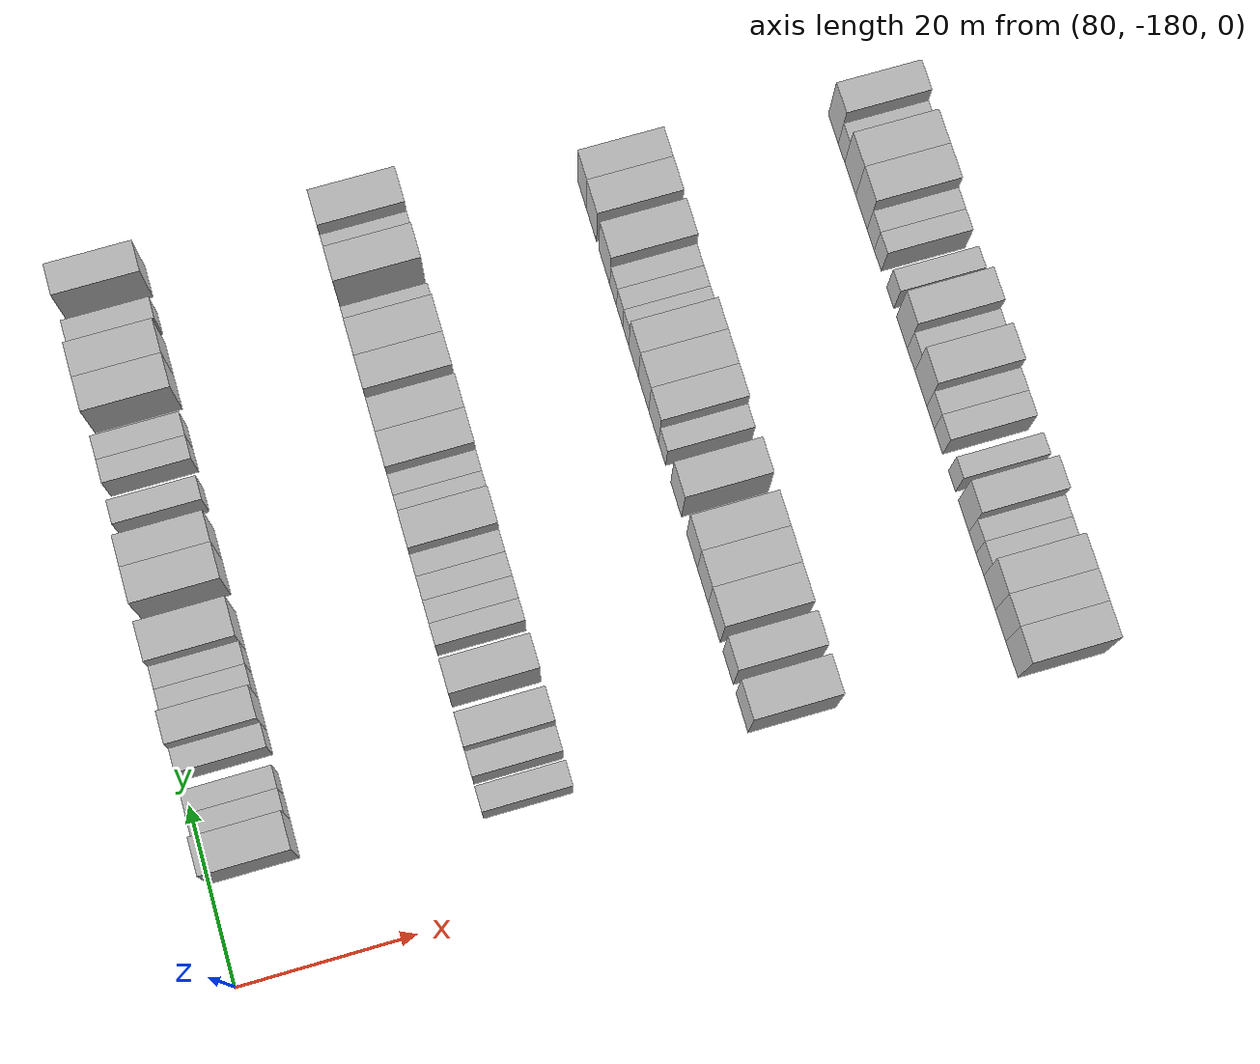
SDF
<sdf version="1.6">
 <world name="default">
  <model name="building_521">
   <static>1</static>
   <pose>85.0000 -166.6216 0 0.000000 0.000000 0.000000</pose>
   <link name="link">
    <pose>0 0 4.50 0 0 0</pose>
    <collision name="collision"><geometry><box><size>10.0000 4.2219 9.0000</size></box></geometry></collision>
    <visual name="visual">
     <cast_shadows>0</cast_shadows>
     <geometry><box><size>10.0000 4.2219 9.0000</size></box></geometry>
     <material>
      <script>
       <uri>model://HANNAS_wall/materials/scripts</uri>
       <uri>model://HANNAS_wall/materials/textures</uri>
       <name>vrc/HANNAS_wall</name>
      </script>
     </material>
    </visual>
   </link>
  </model>
  <model name="building_522">
   <static>1</static>
   <pose>85.0000 -163.1021 0 0.000000 0.000000 0.000000</pose>
   <link name="link">
    <pose>0 0 3.00 0 0 0</pose>
    <collision name="collision"><geometry><box><size>10.0000 2.8172 6.0000</size></box></geometry></collision>
    <visual name="visual">
     <cast_shadows>0</cast_shadows>
     <geometry><box><size>10.0000 2.8172 6.0000</size></box></geometry>
     <material>
      <script>
       <uri>model://HANNAS_wall/materials/scripts</uri>
       <uri>model://HANNAS_wall/materials/textures</uri>
       <name>vrc/HANNAS_wall</name>
      </script>
     </material>
    </visual>
   </link>
  </model>
  <model name="building_523">
   <static>1</static>
   <pose>85.0000 -160.4286 0 0.000000 0.000000 0.000000</pose>
   <link name="link">
    <pose>0 0 3.00 0 0 0</pose>
    <collision name="collision"><geometry><box><size>10.0000 2.5297 6.0000</size></box></geometry></collision>
    <visual name="visual">
     <cast_shadows>0</cast_shadows>
     <geometry><box><size>10.0000 2.5297 6.0000</size></box></geometry>
     <material>
      <script>
       <uri>model://HANNAS_wall/materials/scripts</uri>
       <uri>model://HANNAS_wall/materials/textures</uri>
       <name>vrc/HANNAS_wall</name>
      </script>
     </material>
    </visual>
   </link>
  </model>
  <model name="building_524">
   <static>1</static>
   <pose>85.0000 -155.8087 0 0.000000 0.000000 0.000000</pose>
   <link name="link">
    <pose>0 0 3.00 0 0 0</pose>
    <collision name="collision"><geometry><box><size>10.0000 2.7101 6.0000</size></box></geometry></collision>
    <visual name="visual">
     <cast_shadows>0</cast_shadows>
     <geometry><box><size>10.0000 2.7101 6.0000</size></box></geometry>
     <material>
      <script>
       <uri>model://HANNAS_wall/materials/scripts</uri>
       <uri>model://HANNAS_wall/materials/textures</uri>
       <name>vrc/HANNAS_wall</name>
      </script>
     </material>
    </visual>
   </link>
  </model>
  <model name="building_525">
   <static>1</static>
   <pose>85.0000 -152.6145 0 0.000000 0.000000 0.000000</pose>
   <link name="link">
    <pose>0 0 4.50 0 0 0</pose>
    <collision name="collision"><geometry><box><size>10.0000 3.6782 9.0000</size></box></geometry></collision>
    <visual name="visual">
     <cast_shadows>0</cast_shadows>
     <geometry><box><size>10.0000 3.6782 9.0000</size></box></geometry>
     <material>
      <script>
       <uri>model://HANNAS_wall/materials/scripts</uri>
       <uri>model://HANNAS_wall/materials/textures</uri>
       <name>vrc/HANNAS_wall</name>
      </script>
     </material>
    </visual>
   </link>
  </model>
  <model name="building_526">
   <static>1</static>
   <pose>85.0000 -149.3293 0 0.000000 0.000000 0.000000</pose>
   <link name="link">
    <pose>0 0 3.00 0 0 0</pose>
    <collision name="collision"><geometry><box><size>10.0000 2.8923 6.0000</size></box></geometry></collision>
    <visual name="visual">
     <cast_shadows>0</cast_shadows>
     <geometry><box><size>10.0000 2.8923 6.0000</size></box></geometry>
     <material>
      <script>
       <uri>model://HANNAS_wall/materials/scripts</uri>
       <uri>model://HANNAS_wall/materials/textures</uri>
       <name>vrc/HANNAS_wall</name>
      </script>
     </material>
    </visual>
   </link>
  </model>
  <model name="building_527">
   <static>1</static>
   <pose>85.0000 -146.5955 0 0.000000 0.000000 0.000000</pose>
   <link name="link">
    <pose>0 0 3.00 0 0 0</pose>
    <collision name="collision"><geometry><box><size>10.0000 2.5754 6.0000</size></box></geometry></collision>
    <visual name="visual">
     <cast_shadows>0</cast_shadows>
     <geometry><box><size>10.0000 2.5754 6.0000</size></box></geometry>
     <material>
      <script>
       <uri>model://HANNAS_wall/materials/scripts</uri>
       <uri>model://HANNAS_wall/materials/textures</uri>
       <name>vrc/HANNAS_wall</name>
      </script>
     </material>
    </visual>
   </link>
  </model>
  <model name="building_528">
   <static>1</static>
   <pose>85.0000 -143.0766 0 0.000000 0.000000 0.000000</pose>
   <link name="link">
    <pose>0 0 4.50 0 0 0</pose>
    <collision name="collision"><geometry><box><size>10.0000 4.4623 9.0000</size></box></geometry></collision>
    <visual name="visual">
     <cast_shadows>0</cast_shadows>
     <geometry><box><size>10.0000 4.4623 9.0000</size></box></geometry>
     <material>
      <script>
       <uri>model://HANNAS_wall/materials/scripts</uri>
       <uri>model://HANNAS_wall/materials/textures</uri>
       <name>vrc/HANNAS_wall</name>
      </script>
     </material>
    </visual>
   </link>
  </model>
  <model name="building_529">
   <static>1</static>
   <pose>85.0000 -136.7716 0 0.000000 0.000000 0.000000</pose>
   <link name="link">
    <pose>0 0 4.50 0 0 0</pose>
    <collision name="collision"><geometry><box><size>10.0000 4.1477 9.0000</size></box></geometry></collision>
    <visual name="visual">
     <cast_shadows>0</cast_shadows>
     <geometry><box><size>10.0000 4.1477 9.0000</size></box></geometry>
     <material>
      <script>
       <uri>model://HANNAS_wall/materials/scripts</uri>
       <uri>model://HANNAS_wall/materials/textures</uri>
       <name>vrc/HANNAS_wall</name>
      </script>
     </material>
    </visual>
   </link>
  </model>
  <model name="building_530">
   <static>1</static>
   <pose>85.0000 -132.8942 0 0.000000 0.000000 0.000000</pose>
   <link name="link">
    <pose>0 0 4.50 0 0 0</pose>
    <collision name="collision"><geometry><box><size>10.0000 3.6071 9.0000</size></box></geometry></collision>
    <visual name="visual">
     <cast_shadows>0</cast_shadows>
     <geometry><box><size>10.0000 3.6071 9.0000</size></box></geometry>
     <material>
      <script>
       <uri>model://HANNAS_wall/materials/scripts</uri>
       <uri>model://HANNAS_wall/materials/textures</uri>
       <name>vrc/HANNAS_wall</name>
      </script>
     </material>
    </visual>
   </link>
  </model>
  <model name="building_531">
   <static>1</static>
   <pose>85.0000 -127.7122 0 0.000000 0.000000 0.000000</pose>
   <link name="link">
    <pose>0 0 3.00 0 0 0</pose>
    <collision name="collision"><geometry><box><size>10.0000 2.7568 6.0000</size></box></geometry></collision>
    <visual name="visual">
     <cast_shadows>0</cast_shadows>
     <geometry><box><size>10.0000 2.7568 6.0000</size></box></geometry>
     <material>
      <script>
       <uri>model://HANNAS_wall/materials/scripts</uri>
       <uri>model://HANNAS_wall/materials/textures</uri>
       <name>vrc/HANNAS_wall</name>
      </script>
     </material>
    </visual>
   </link>
  </model>
  <model name="building_532">
   <static>1</static>
   <pose>85.0000 -122.9657 0 0.000000 0.000000 0.000000</pose>
   <link name="link">
    <pose>0 0 3.00 0 0 0</pose>
    <collision name="collision"><geometry><box><size>10.0000 2.7361 6.0000</size></box></geometry></collision>
    <visual name="visual">
     <cast_shadows>0</cast_shadows>
     <geometry><box><size>10.0000 2.7361 6.0000</size></box></geometry>
     <material>
      <script>
       <uri>model://HANNAS_wall/materials/scripts</uri>
       <uri>model://HANNAS_wall/materials/textures</uri>
       <name>vrc/HANNAS_wall</name>
      </script>
     </material>
    </visual>
   </link>
  </model>
  <model name="building_533">
   <static>1</static>
   <pose>85.0000 -120.2069 0 0.000000 0.000000 0.000000</pose>
   <link name="link">
    <pose>0 0 3.00 0 0 0</pose>
    <collision name="collision"><geometry><box><size>10.0000 2.7817 6.0000</size></box></geometry></collision>
    <visual name="visual">
     <cast_shadows>0</cast_shadows>
     <geometry><box><size>10.0000 2.7817 6.0000</size></box></geometry>
     <material>
      <script>
       <uri>model://HANNAS_wall/materials/scripts</uri>
       <uri>model://HANNAS_wall/materials/textures</uri>
       <name>vrc/HANNAS_wall</name>
      </script>
     </material>
    </visual>
   </link>
  </model>
  <model name="building_534">
   <static>1</static>
   <pose>85.0000 -114.7946 0 0.000000 0.000000 0.000000</pose>
   <link name="link">
    <pose>0 0 4.50 0 0 0</pose>
    <collision name="collision"><geometry><box><size>10.0000 4.0430 9.0000</size></box></geometry></collision>
    <visual name="visual">
     <cast_shadows>0</cast_shadows>
     <geometry><box><size>10.0000 4.0430 9.0000</size></box></geometry>
     <material>
      <script>
       <uri>model://HANNAS_wall/materials/scripts</uri>
       <uri>model://HANNAS_wall/materials/textures</uri>
       <name>vrc/HANNAS_wall</name>
      </script>
     </material>
    </visual>
   </link>
  </model>
  <model name="building_535">
   <static>1</static>
   <pose>85.0000 -110.7389 0 0.000000 0.000000 0.000000</pose>
   <link name="link">
    <pose>0 0 4.50 0 0 0</pose>
    <collision name="collision"><geometry><box><size>10.0000 4.0684 9.0000</size></box></geometry></collision>
    <visual name="visual">
     <cast_shadows>0</cast_shadows>
     <geometry><box><size>10.0000 4.0684 9.0000</size></box></geometry>
     <material>
      <script>
       <uri>model://HANNAS_wall/materials/scripts</uri>
       <uri>model://HANNAS_wall/materials/textures</uri>
       <name>vrc/HANNAS_wall</name>
      </script>
     </material>
    </visual>
   </link>
  </model>
  <model name="building_536">
   <static>1</static>
   <pose>85.0000 -106.3944 0 0.000000 0.000000 0.000000</pose>
   <link name="link">
    <pose>0 0 3.00 0 0 0</pose>
    <collision name="collision"><geometry><box><size>10.0000 2.6205 6.0000</size></box></geometry></collision>
    <visual name="visual">
     <cast_shadows>0</cast_shadows>
     <geometry><box><size>10.0000 2.6205 6.0000</size></box></geometry>
     <material>
      <script>
       <uri>model://HANNAS_wall/materials/scripts</uri>
       <uri>model://HANNAS_wall/materials/textures</uri>
       <name>vrc/HANNAS_wall</name>
      </script>
     </material>
    </visual>
   </link>
  </model>
  <model name="building_537">
   <static>1</static>
   <pose>85.0000 -101.2181 0 0.000000 0.000000 0.000000</pose>
   <link name="link">
    <pose>0 0 4.50 0 0 0</pose>
    <collision name="collision"><geometry><box><size>10.0000 3.7322 9.0000</size></box></geometry></collision>
    <visual name="visual">
     <cast_shadows>0</cast_shadows>
     <geometry><box><size>10.0000 3.7322 9.0000</size></box></geometry>
     <material>
      <script>
       <uri>model://HANNAS_wall/materials/scripts</uri>
       <uri>model://HANNAS_wall/materials/textures</uri>
       <name>vrc/HANNAS_wall</name>
      </script>
     </material>
    </visual>
   </link>
  </model>
  <model name="building_754">
   <static>1</static>
   <pose>115.0000 -168.7305 0 0.000000 0.000000 0.000000</pose>
   <link name="link">
    <pose>0 0 3.00 0 0 0</pose>
    <collision name="collision"><geometry><box><size>10.0000 2.8533 6.0000</size></box></geometry></collision>
    <visual name="visual">
     <cast_shadows>0</cast_shadows>
     <geometry><box><size>10.0000 2.8533 6.0000</size></box></geometry>
     <material>
      <script>
       <uri>model://HANNAS_wall/materials/scripts</uri>
       <uri>model://HANNAS_wall/materials/textures</uri>
       <name>vrc/HANNAS_wall</name>
      </script>
     </material>
    </visual>
   </link>
  </model>
  <model name="building_755">
   <static>1</static>
   <pose>115.0000 -164.8703 0 0.000000 0.000000 0.000000</pose>
   <link name="link">
    <pose>0 0 3.00 0 0 0</pose>
    <collision name="collision"><geometry><box><size>10.0000 2.8670 6.0000</size></box></geometry></collision>
    <visual name="visual">
     <cast_shadows>0</cast_shadows>
     <geometry><box><size>10.0000 2.8670 6.0000</size></box></geometry>
     <material>
      <script>
       <uri>model://HANNAS_wall/materials/scripts</uri>
       <uri>model://HANNAS_wall/materials/textures</uri>
       <name>vrc/HANNAS_wall</name>
      </script>
     </material>
    </visual>
   </link>
  </model>
  <model name="building_756">
   <static>1</static>
   <pose>115.0000 -161.5123 0 0.000000 0.000000 0.000000</pose>
   <link name="link">
    <pose>0 0 4.50 0 0 0</pose>
    <collision name="collision"><geometry><box><size>10.0000 3.8490 9.0000</size></box></geometry></collision>
    <visual name="visual">
     <cast_shadows>0</cast_shadows>
     <geometry><box><size>10.0000 3.8490 9.0000</size></box></geometry>
     <material>
      <script>
       <uri>model://HANNAS_wall/materials/scripts</uri>
       <uri>model://HANNAS_wall/materials/textures</uri>
       <name>vrc/HANNAS_wall</name>
      </script>
     </material>
    </visual>
   </link>
  </model>
  <model name="building_757">
   <static>1</static>
   <pose>115.0000 -155.6381 0 0.000000 0.000000 0.000000</pose>
   <link name="link">
    <pose>0 0 4.50 0 0 0</pose>
    <collision name="collision"><geometry><box><size>10.0000 3.8994 9.0000</size></box></geometry></collision>
    <visual name="visual">
     <cast_shadows>0</cast_shadows>
     <geometry><box><size>10.0000 3.8994 9.0000</size></box></geometry>
     <material>
      <script>
       <uri>model://HANNAS_wall/materials/scripts</uri>
       <uri>model://HANNAS_wall/materials/textures</uri>
       <name>vrc/HANNAS_wall</name>
      </script>
     </material>
    </visual>
   </link>
  </model>
  <model name="building_758">
   <static>1</static>
   <pose>115.0000 -150.4165 0 0.000000 0.000000 0.000000</pose>
   <link name="link">
    <pose>0 0 3.00 0 0 0</pose>
    <collision name="collision"><geometry><box><size>10.0000 2.5439 6.0000</size></box></geometry></collision>
    <visual name="visual">
     <cast_shadows>0</cast_shadows>
     <geometry><box><size>10.0000 2.5439 6.0000</size></box></geometry>
     <material>
      <script>
       <uri>model://HANNAS_wall/materials/scripts</uri>
       <uri>model://HANNAS_wall/materials/textures</uri>
       <name>vrc/HANNAS_wall</name>
      </script>
     </material>
    </visual>
   </link>
  </model>
  <model name="building_759">
   <static>1</static>
   <pose>115.0000 -147.8576 0 0.000000 0.000000 0.000000</pose>
   <link name="link">
    <pose>0 0 3.00 0 0 0</pose>
    <collision name="collision"><geometry><box><size>10.0000 2.5738 6.0000</size></box></geometry></collision>
    <visual name="visual">
     <cast_shadows>0</cast_shadows>
     <geometry><box><size>10.0000 2.5738 6.0000</size></box></geometry>
     <material>
      <script>
       <uri>model://HANNAS_wall/materials/scripts</uri>
       <uri>model://HANNAS_wall/materials/textures</uri>
       <name>vrc/HANNAS_wall</name>
      </script>
     </material>
    </visual>
   </link>
  </model>
  <model name="building_760">
   <static>1</static>
   <pose>115.0000 -145.1961 0 0.000000 0.000000 0.000000</pose>
   <link name="link">
    <pose>0 0 3.00 0 0 0</pose>
    <collision name="collision"><geometry><box><size>10.0000 2.7491 6.0000</size></box></geometry></collision>
    <visual name="visual">
     <cast_shadows>0</cast_shadows>
     <geometry><box><size>10.0000 2.7491 6.0000</size></box></geometry>
     <material>
      <script>
       <uri>model://HANNAS_wall/materials/scripts</uri>
       <uri>model://HANNAS_wall/materials/textures</uri>
       <name>vrc/HANNAS_wall</name>
      </script>
     </material>
    </visual>
   </link>
  </model>
  <model name="building_761">
   <static>1</static>
   <pose>115.0000 -142.5381 0 0.000000 0.000000 0.000000</pose>
   <link name="link">
    <pose>0 0 3.00 0 0 0</pose>
    <collision name="collision"><geometry><box><size>10.0000 2.5670 6.0000</size></box></geometry></collision>
    <visual name="visual">
     <cast_shadows>0</cast_shadows>
     <geometry><box><size>10.0000 2.5670 6.0000</size></box></geometry>
     <material>
      <script>
       <uri>model://HANNAS_wall/materials/scripts</uri>
       <uri>model://HANNAS_wall/materials/textures</uri>
       <name>vrc/HANNAS_wall</name>
      </script>
     </material>
    </visual>
   </link>
  </model>
  <model name="building_762">
   <static>1</static>
   <pose>115.0000 -139.1186 0 0.000000 0.000000 0.000000</pose>
   <link name="link">
    <pose>0 0 4.50 0 0 0</pose>
    <collision name="collision"><geometry><box><size>10.0000 4.2720 9.0000</size></box></geometry></collision>
    <visual name="visual">
     <cast_shadows>0</cast_shadows>
     <geometry><box><size>10.0000 4.2720 9.0000</size></box></geometry>
     <material>
      <script>
       <uri>model://HANNAS_wall/materials/scripts</uri>
       <uri>model://HANNAS_wall/materials/textures</uri>
       <name>vrc/HANNAS_wall</name>
      </script>
     </material>
    </visual>
   </link>
  </model>
  <model name="building_763">
   <static>1</static>
   <pose>115.0000 -135.7194 0 0.000000 0.000000 0.000000</pose>
   <link name="link">
    <pose>0 0 3.00 0 0 0</pose>
    <collision name="collision"><geometry><box><size>10.0000 2.5264 6.0000</size></box></geometry></collision>
    <visual name="visual">
     <cast_shadows>0</cast_shadows>
     <geometry><box><size>10.0000 2.5264 6.0000</size></box></geometry>
     <material>
      <script>
       <uri>model://HANNAS_wall/materials/scripts</uri>
       <uri>model://HANNAS_wall/materials/textures</uri>
       <name>vrc/HANNAS_wall</name>
      </script>
     </material>
    </visual>
   </link>
  </model>
  <model name="building_764">
   <static>1</static>
   <pose>115.0000 -133.2187 0 0.000000 0.000000 0.000000</pose>
   <link name="link">
    <pose>0 0 3.00 0 0 0</pose>
    <collision name="collision"><geometry><box><size>10.0000 2.4751 6.0000</size></box></geometry></collision>
    <visual name="visual">
     <cast_shadows>0</cast_shadows>
     <geometry><box><size>10.0000 2.4751 6.0000</size></box></geometry>
     <material>
      <script>
       <uri>model://HANNAS_wall/materials/scripts</uri>
       <uri>model://HANNAS_wall/materials/textures</uri>
       <name>vrc/HANNAS_wall</name>
      </script>
     </material>
    </visual>
   </link>
  </model>
  <model name="building_765">
   <static>1</static>
   <pose>115.0000 -129.9228 0 0.000000 0.000000 0.000000</pose>
   <link name="link">
    <pose>0 0 4.50 0 0 0</pose>
    <collision name="collision"><geometry><box><size>10.0000 4.1165 9.0000</size></box></geometry></collision>
    <visual name="visual">
     <cast_shadows>0</cast_shadows>
     <geometry><box><size>10.0000 4.1165 9.0000</size></box></geometry>
     <material>
      <script>
       <uri>model://HANNAS_wall/materials/scripts</uri>
       <uri>model://HANNAS_wall/materials/textures</uri>
       <name>vrc/HANNAS_wall</name>
      </script>
     </material>
    </visual>
   </link>
  </model>
  <model name="building_766">
   <static>1</static>
   <pose>115.0000 -125.8862 0 0.000000 0.000000 0.000000</pose>
   <link name="link">
    <pose>0 0 4.50 0 0 0</pose>
    <collision name="collision"><geometry><box><size>10.0000 3.9567 9.0000</size></box></geometry></collision>
    <visual name="visual">
     <cast_shadows>0</cast_shadows>
     <geometry><box><size>10.0000 3.9567 9.0000</size></box></geometry>
     <material>
      <script>
       <uri>model://HANNAS_wall/materials/scripts</uri>
       <uri>model://HANNAS_wall/materials/textures</uri>
       <name>vrc/HANNAS_wall</name>
      </script>
     </material>
    </visual>
   </link>
  </model>
  <model name="building_767">
   <static>1</static>
   <pose>115.0000 -120.9160 0 0.000000 0.000000 0.000000</pose>
   <link name="link">
    <pose>0 0 4.50 0 0 0</pose>
    <collision name="collision"><geometry><box><size>10.0000 3.9837 9.0000</size></box></geometry></collision>
    <visual name="visual">
     <cast_shadows>0</cast_shadows>
     <geometry><box><size>10.0000 3.9837 9.0000</size></box></geometry>
     <material>
      <script>
       <uri>model://HANNAS_wall/materials/scripts</uri>
       <uri>model://HANNAS_wall/materials/textures</uri>
       <name>vrc/HANNAS_wall</name>
      </script>
     </material>
    </visual>
   </link>
  </model>
  <model name="building_768">
   <static>1</static>
   <pose>115.0000 -116.7373 0 0.000000 0.000000 0.000000</pose>
   <link name="link">
    <pose>0 0 4.50 0 0 0</pose>
    <collision name="collision"><geometry><box><size>10.0000 4.3737 9.0000</size></box></geometry></collision>
    <visual name="visual">
     <cast_shadows>0</cast_shadows>
     <geometry><box><size>10.0000 4.3737 9.0000</size></box></geometry>
     <material>
      <script>
       <uri>model://HANNAS_wall/materials/scripts</uri>
       <uri>model://HANNAS_wall/materials/textures</uri>
       <name>vrc/HANNAS_wall</name>
      </script>
     </material>
    </visual>
   </link>
  </model>
  <model name="building_769">
   <static>1</static>
   <pose>115.0000 -113.3337 0 0.000000 0.000000 0.000000</pose>
   <link name="link">
    <pose>0 0 3.00 0 0 0</pose>
    <collision name="collision"><geometry><box><size>10.0000 2.4335 6.0000</size></box></geometry></collision>
    <visual name="visual">
     <cast_shadows>0</cast_shadows>
     <geometry><box><size>10.0000 2.4335 6.0000</size></box></geometry>
     <material>
      <script>
       <uri>model://HANNAS_wall/materials/scripts</uri>
       <uri>model://HANNAS_wall/materials/textures</uri>
       <name>vrc/HANNAS_wall</name>
      </script>
     </material>
    </visual>
   </link>
  </model>
  <model name="building_770">
   <static>1</static>
   <pose>115.0000 -108.0177 0 0.000000 0.000000 0.000000</pose>
   <link name="link">
    <pose>0 0 4.50 0 0 0</pose>
    <collision name="collision"><geometry><box><size>10.0000 4.1985 9.0000</size></box></geometry></collision>
    <visual name="visual">
     <cast_shadows>0</cast_shadows>
     <geometry><box><size>10.0000 4.1985 9.0000</size></box></geometry>
     <material>
      <script>
       <uri>model://HANNAS_wall/materials/scripts</uri>
       <uri>model://HANNAS_wall/materials/textures</uri>
       <name>vrc/HANNAS_wall</name>
      </script>
     </material>
    </visual>
   </link>
  </model>
  <model name="building_771">
   <static>1</static>
   <pose>115.0000 -104.6468 0 0.000000 0.000000 0.000000</pose>
   <link name="link">
    <pose>0 0 3.00 0 0 0</pose>
    <collision name="collision"><geometry><box><size>10.0000 2.5434 6.0000</size></box></geometry></collision>
    <visual name="visual">
     <cast_shadows>0</cast_shadows>
     <geometry><box><size>10.0000 2.5434 6.0000</size></box></geometry>
     <material>
      <script>
       <uri>model://HANNAS_wall/materials/scripts</uri>
       <uri>model://HANNAS_wall/materials/textures</uri>
       <name>vrc/HANNAS_wall</name>
      </script>
     </material>
    </visual>
   </link>
  </model>
  <model name="building_772">
   <static>1</static>
   <pose>115.0000 -101.2162 0 0.000000 0.000000 0.000000</pose>
   <link name="link">
    <pose>0 0 4.50 0 0 0</pose>
    <collision name="collision"><geometry><box><size>10.0000 4.3178 9.0000</size></box></geometry></collision>
    <visual name="visual">
     <cast_shadows>0</cast_shadows>
     <geometry><box><size>10.0000 4.3178 9.0000</size></box></geometry>
     <material>
      <script>
       <uri>model://HANNAS_wall/materials/scripts</uri>
       <uri>model://HANNAS_wall/materials/textures</uri>
       <name>vrc/HANNAS_wall</name>
      </script>
     </material>
    </visual>
   </link>
  </model>
  <model name="building_971">
   <static>1</static>
   <pose>145.0000 -166.9466 0 0.000000 0.000000 0.000000</pose>
   <link name="link">
    <pose>0 0 4.50 0 0 0</pose>
    <collision name="collision"><geometry><box><size>10.0000 4.4837 9.0000</size></box></geometry></collision>
    <visual name="visual">
     <cast_shadows>0</cast_shadows>
     <geometry><box><size>10.0000 4.4837 9.0000</size></box></geometry>
     <material>
      <script>
       <uri>model://HANNAS_wall/materials/scripts</uri>
       <uri>model://HANNAS_wall/materials/textures</uri>
       <name>vrc/HANNAS_wall</name>
      </script>
     </material>
    </visual>
   </link>
  </model>
  <model name="building_972">
   <static>1</static>
   <pose>145.0000 -161.7770 0 0.000000 0.000000 0.000000</pose>
   <link name="link">
    <pose>0 0 4.50 0 0 0</pose>
    <collision name="collision"><geometry><box><size>10.0000 3.8556 9.0000</size></box></geometry></collision>
    <visual name="visual">
     <cast_shadows>0</cast_shadows>
     <geometry><box><size>10.0000 3.8556 9.0000</size></box></geometry>
     <material>
      <script>
       <uri>model://HANNAS_wall/materials/scripts</uri>
       <uri>model://HANNAS_wall/materials/textures</uri>
       <name>vrc/HANNAS_wall</name>
      </script>
     </material>
    </visual>
   </link>
  </model>
  <model name="building_973">
   <static>1</static>
   <pose>145.0000 -156.6125 0 0.000000 0.000000 0.000000</pose>
   <link name="link">
    <pose>0 0 4.50 0 0 0</pose>
    <collision name="collision"><geometry><box><size>10.0000 4.4734 9.0000</size></box></geometry></collision>
    <visual name="visual">
     <cast_shadows>0</cast_shadows>
     <geometry><box><size>10.0000 4.4734 9.0000</size></box></geometry>
     <material>
      <script>
       <uri>model://HANNAS_wall/materials/scripts</uri>
       <uri>model://HANNAS_wall/materials/textures</uri>
       <name>vrc/HANNAS_wall</name>
      </script>
     </material>
    </visual>
   </link>
  </model>
  <model name="building_974">
   <static>1</static>
   <pose>145.0000 -152.3134 0 0.000000 0.000000 0.000000</pose>
   <link name="link">
    <pose>0 0 4.50 0 0 0</pose>
    <collision name="collision"><geometry><box><size>10.0000 4.1247 9.0000</size></box></geometry></collision>
    <visual name="visual">
     <cast_shadows>0</cast_shadows>
     <geometry><box><size>10.0000 4.1247 9.0000</size></box></geometry>
     <material>
      <script>
       <uri>model://HANNAS_wall/materials/scripts</uri>
       <uri>model://HANNAS_wall/materials/textures</uri>
       <name>vrc/HANNAS_wall</name>
      </script>
     </material>
    </visual>
   </link>
  </model>
  <model name="building_975">
   <static>1</static>
   <pose>145.0000 -148.2124 0 0.000000 0.000000 0.000000</pose>
   <link name="link">
    <pose>0 0 4.50 0 0 0</pose>
    <collision name="collision"><geometry><box><size>10.0000 4.0772 9.0000</size></box></geometry></collision>
    <visual name="visual">
     <cast_shadows>0</cast_shadows>
     <geometry><box><size>10.0000 4.0772 9.0000</size></box></geometry>
     <material>
      <script>
       <uri>model://HANNAS_wall/materials/scripts</uri>
       <uri>model://HANNAS_wall/materials/textures</uri>
       <name>vrc/HANNAS_wall</name>
      </script>
     </material>
    </visual>
   </link>
  </model>
  <model name="building_976">
   <static>1</static>
   <pose>145.0000 -142.1077 0 0.000000 0.000000 0.000000</pose>
   <link name="link">
    <pose>0 0 4.50 0 0 0</pose>
    <collision name="collision"><geometry><box><size>10.0000 4.1321 9.0000</size></box></geometry></collision>
    <visual name="visual">
     <cast_shadows>0</cast_shadows>
     <geometry><box><size>10.0000 4.1321 9.0000</size></box></geometry>
     <material>
      <script>
       <uri>model://HANNAS_wall/materials/scripts</uri>
       <uri>model://HANNAS_wall/materials/textures</uri>
       <name>vrc/HANNAS_wall</name>
      </script>
     </material>
    </visual>
   </link>
  </model>
  <model name="building_977">
   <static>1</static>
   <pose>145.0000 -136.6582 0 0.000000 0.000000 0.000000</pose>
   <link name="link">
    <pose>0 0 3.00 0 0 0</pose>
    <collision name="collision"><geometry><box><size>10.0000 2.7668 6.0000</size></box></geometry></collision>
    <visual name="visual">
     <cast_shadows>0</cast_shadows>
     <geometry><box><size>10.0000 2.7668 6.0000</size></box></geometry>
     <material>
      <script>
       <uri>model://HANNAS_wall/materials/scripts</uri>
       <uri>model://HANNAS_wall/materials/textures</uri>
       <name>vrc/HANNAS_wall</name>
      </script>
     </material>
    </visual>
   </link>
  </model>
  <model name="building_978">
   <static>1</static>
   <pose>145.0000 -133.3558 0 0.000000 0.000000 0.000000</pose>
   <link name="link">
    <pose>0 0 4.50 0 0 0</pose>
    <collision name="collision"><geometry><box><size>10.0000 3.8381 9.0000</size></box></geometry></collision>
    <visual name="visual">
     <cast_shadows>0</cast_shadows>
     <geometry><box><size>10.0000 3.8381 9.0000</size></box></geometry>
     <material>
      <script>
       <uri>model://HANNAS_wall/materials/scripts</uri>
       <uri>model://HANNAS_wall/materials/textures</uri>
       <name>vrc/HANNAS_wall</name>
      </script>
     </material>
    </visual>
   </link>
  </model>
  <model name="building_979">
   <static>1</static>
   <pose>145.0000 -129.3885 0 0.000000 0.000000 0.000000</pose>
   <link name="link">
    <pose>0 0 4.50 0 0 0</pose>
    <collision name="collision"><geometry><box><size>10.0000 4.0965 9.0000</size></box></geometry></collision>
    <visual name="visual">
     <cast_shadows>0</cast_shadows>
     <geometry><box><size>10.0000 4.0965 9.0000</size></box></geometry>
     <material>
      <script>
       <uri>model://HANNAS_wall/materials/scripts</uri>
       <uri>model://HANNAS_wall/materials/textures</uri>
       <name>vrc/HANNAS_wall</name>
      </script>
     </material>
    </visual>
   </link>
  </model>
  <model name="building_980">
   <static>1</static>
   <pose>145.0000 -125.4721 0 0.000000 0.000000 0.000000</pose>
   <link name="link">
    <pose>0 0 4.50 0 0 0</pose>
    <collision name="collision"><geometry><box><size>10.0000 3.7362 9.0000</size></box></geometry></collision>
    <visual name="visual">
     <cast_shadows>0</cast_shadows>
     <geometry><box><size>10.0000 3.7362 9.0000</size></box></geometry>
     <material>
      <script>
       <uri>model://HANNAS_wall/materials/scripts</uri>
       <uri>model://HANNAS_wall/materials/textures</uri>
       <name>vrc/HANNAS_wall</name>
      </script>
     </material>
    </visual>
   </link>
  </model>
  <model name="building_981">
   <static>1</static>
   <pose>145.0000 -122.3923 0 0.000000 0.000000 0.000000</pose>
   <link name="link">
    <pose>0 0 3.00 0 0 0</pose>
    <collision name="collision"><geometry><box><size>10.0000 2.4234 6.0000</size></box></geometry></collision>
    <visual name="visual">
     <cast_shadows>0</cast_shadows>
     <geometry><box><size>10.0000 2.4234 6.0000</size></box></geometry>
     <material>
      <script>
       <uri>model://HANNAS_wall/materials/scripts</uri>
       <uri>model://HANNAS_wall/materials/textures</uri>
       <name>vrc/HANNAS_wall</name>
      </script>
     </material>
    </visual>
   </link>
  </model>
  <model name="building_982">
   <static>1</static>
   <pose>145.0000 -119.9399 0 0.000000 0.000000 0.000000</pose>
   <link name="link">
    <pose>0 0 3.00 0 0 0</pose>
    <collision name="collision"><geometry><box><size>10.0000 2.4814 6.0000</size></box></geometry></collision>
    <visual name="visual">
     <cast_shadows>0</cast_shadows>
     <geometry><box><size>10.0000 2.4814 6.0000</size></box></geometry>
     <material>
      <script>
       <uri>model://HANNAS_wall/materials/scripts</uri>
       <uri>model://HANNAS_wall/materials/textures</uri>
       <name>vrc/HANNAS_wall</name>
      </script>
     </material>
    </visual>
   </link>
  </model>
  <model name="building_983">
   <static>1</static>
   <pose>145.0000 -117.3708 0 0.000000 0.000000 0.000000</pose>
   <link name="link">
    <pose>0 0 3.00 0 0 0</pose>
    <collision name="collision"><geometry><box><size>10.0000 2.6569 6.0000</size></box></geometry></collision>
    <visual name="visual">
     <cast_shadows>0</cast_shadows>
     <geometry><box><size>10.0000 2.6569 6.0000</size></box></geometry>
     <material>
      <script>
       <uri>model://HANNAS_wall/materials/scripts</uri>
       <uri>model://HANNAS_wall/materials/textures</uri>
       <name>vrc/HANNAS_wall</name>
      </script>
     </material>
    </visual>
   </link>
  </model>
  <model name="building_984">
   <static>1</static>
   <pose>145.0000 -113.8441 0 0.000000 0.000000 0.000000</pose>
   <link name="link">
    <pose>0 0 4.50 0 0 0</pose>
    <collision name="collision"><geometry><box><size>10.0000 4.3963 9.0000</size></box></geometry></collision>
    <visual name="visual">
     <cast_shadows>0</cast_shadows>
     <geometry><box><size>10.0000 4.3963 9.0000</size></box></geometry>
     <material>
      <script>
       <uri>model://HANNAS_wall/materials/scripts</uri>
       <uri>model://HANNAS_wall/materials/textures</uri>
       <name>vrc/HANNAS_wall</name>
      </script>
     </material>
    </visual>
   </link>
  </model>
  <model name="building_985">
   <static>1</static>
   <pose>145.0000 -108.5720 0 0.000000 0.000000 0.000000</pose>
   <link name="link">
    <pose>0 0 4.50 0 0 0</pose>
    <collision name="collision"><geometry><box><size>10.0000 4.1479 9.0000</size></box></geometry></collision>
    <visual name="visual">
     <cast_shadows>0</cast_shadows>
     <geometry><box><size>10.0000 4.1479 9.0000</size></box></geometry>
     <material>
      <script>
       <uri>model://HANNAS_wall/materials/scripts</uri>
       <uri>model://HANNAS_wall/materials/textures</uri>
       <name>vrc/HANNAS_wall</name>
      </script>
     </material>
    </visual>
   </link>
  </model>
  <model name="building_986">
   <static>1</static>
   <pose>145.0000 -104.6917 0 0.000000 0.000000 0.000000</pose>
   <link name="link">
    <pose>0 0 4.50 0 0 0</pose>
    <collision name="collision"><geometry><box><size>10.0000 3.6127 9.0000</size></box></geometry></collision>
    <visual name="visual">
     <cast_shadows>0</cast_shadows>
     <geometry><box><size>10.0000 3.6127 9.0000</size></box></geometry>
     <material>
      <script>
       <uri>model://HANNAS_wall/materials/scripts</uri>
       <uri>model://HANNAS_wall/materials/textures</uri>
       <name>vrc/HANNAS_wall</name>
      </script>
     </material>
    </visual>
   </link>
  </model>
  <model name="building_1199">
   <static>1</static>
   <pose>175.0000 -169.5330 0 0.000000 0.000000 0.000000</pose>
   <link name="link">
    <pose>0 0 4.50 0 0 0</pose>
    <collision name="collision"><geometry><box><size>10.0000 4.1319 9.0000</size></box></geometry></collision>
    <visual name="visual">
     <cast_shadows>0</cast_shadows>
     <geometry><box><size>10.0000 4.1319 9.0000</size></box></geometry>
     <material>
      <script>
       <uri>model://HANNAS_wall/materials/scripts</uri>
       <uri>model://HANNAS_wall/materials/textures</uri>
       <name>vrc/HANNAS_wall</name>
      </script>
     </material>
    </visual>
   </link>
  </model>
  <model name="building_1200">
   <static>1</static>
   <pose>175.0000 -165.6352 0 0.000000 0.000000 0.000000</pose>
   <link name="link">
    <pose>0 0 4.50 0 0 0</pose>
    <collision name="collision"><geometry><box><size>10.0000 3.6637 9.0000</size></box></geometry></collision>
    <visual name="visual">
     <cast_shadows>0</cast_shadows>
     <geometry><box><size>10.0000 3.6637 9.0000</size></box></geometry>
     <material>
      <script>
       <uri>model://HANNAS_wall/materials/scripts</uri>
       <uri>model://HANNAS_wall/materials/textures</uri>
       <name>vrc/HANNAS_wall</name>
      </script>
     </material>
    </visual>
   </link>
  </model>
  <model name="building_1201">
   <static>1</static>
   <pose>175.0000 -161.7996 0 0.000000 0.000000 0.000000</pose>
   <link name="link">
    <pose>0 0 4.50 0 0 0</pose>
    <collision name="collision"><geometry><box><size>10.0000 4.0075 9.0000</size></box></geometry></collision>
    <visual name="visual">
     <cast_shadows>0</cast_shadows>
     <geometry><box><size>10.0000 4.0075 9.0000</size></box></geometry>
     <material>
      <script>
       <uri>model://HANNAS_wall/materials/scripts</uri>
       <uri>model://HANNAS_wall/materials/textures</uri>
       <name>vrc/HANNAS_wall</name>
      </script>
     </material>
    </visual>
   </link>
  </model>
  <model name="building_1202">
   <static>1</static>
   <pose>175.0000 -158.4834 0 0.000000 0.000000 0.000000</pose>
   <link name="link">
    <pose>0 0 3.00 0 0 0</pose>
    <collision name="collision"><geometry><box><size>10.0000 2.6249 6.0000</size></box></geometry></collision>
    <visual name="visual">
     <cast_shadows>0</cast_shadows>
     <geometry><box><size>10.0000 2.6249 6.0000</size></box></geometry>
     <material>
      <script>
       <uri>model://HANNAS_wall/materials/scripts</uri>
       <uri>model://HANNAS_wall/materials/textures</uri>
       <name>vrc/HANNAS_wall</name>
      </script>
     </material>
    </visual>
   </link>
  </model>
  <model name="building_1203">
   <static>1</static>
   <pose>175.0000 -155.9099 0 0.000000 0.000000 0.000000</pose>
   <link name="link">
    <pose>0 0 3.00 0 0 0</pose>
    <collision name="collision"><geometry><box><size>10.0000 2.5222 6.0000</size></box></geometry></collision>
    <visual name="visual">
     <cast_shadows>0</cast_shadows>
     <geometry><box><size>10.0000 2.5222 6.0000</size></box></geometry>
     <material>
      <script>
       <uri>model://HANNAS_wall/materials/scripts</uri>
       <uri>model://HANNAS_wall/materials/textures</uri>
       <name>vrc/HANNAS_wall</name>
      </script>
     </material>
    </visual>
   </link>
  </model>
  <model name="building_1204">
   <static>1</static>
   <pose>175.0000 -152.7651 0 0.000000 0.000000 0.000000</pose>
   <link name="link">
    <pose>0 0 4.50 0 0 0</pose>
    <collision name="collision"><geometry><box><size>10.0000 3.7674 9.0000</size></box></geometry></collision>
    <visual name="visual">
     <cast_shadows>0</cast_shadows>
     <geometry><box><size>10.0000 3.7674 9.0000</size></box></geometry>
     <material>
      <script>
       <uri>model://HANNAS_wall/materials/scripts</uri>
       <uri>model://HANNAS_wall/materials/textures</uri>
       <name>vrc/HANNAS_wall</name>
      </script>
     </material>
    </visual>
   </link>
  </model>
  <model name="building_1205">
   <static>1</static>
   <pose>175.0000 -148.6297 0 0.000000 0.000000 0.000000</pose>
   <link name="link">
    <pose>0 0 3.00 0 0 0</pose>
    <collision name="collision"><geometry><box><size>10.0000 2.5034 6.0000</size></box></geometry></collision>
    <visual name="visual">
     <cast_shadows>0</cast_shadows>
     <geometry><box><size>10.0000 2.5034 6.0000</size></box></geometry>
     <material>
      <script>
       <uri>model://HANNAS_wall/materials/scripts</uri>
       <uri>model://HANNAS_wall/materials/textures</uri>
       <name>vrc/HANNAS_wall</name>
      </script>
     </material>
    </visual>
   </link>
  </model>
  <model name="building_1206">
   <static>1</static>
   <pose>175.0000 -143.8797 0 0.000000 0.000000 0.000000</pose>
   <link name="link">
    <pose>0 0 3.00 0 0 0</pose>
    <collision name="collision"><geometry><box><size>10.0000 2.9965 6.0000</size></box></geometry></collision>
    <visual name="visual">
     <cast_shadows>0</cast_shadows>
     <geometry><box><size>10.0000 2.9965 6.0000</size></box></geometry>
     <material>
      <script>
       <uri>model://HANNAS_wall/materials/scripts</uri>
       <uri>model://HANNAS_wall/materials/textures</uri>
       <name>vrc/HANNAS_wall</name>
      </script>
     </material>
    </visual>
   </link>
  </model>
  <model name="building_1207">
   <static>1</static>
   <pose>175.0000 -141.0112 0 0.000000 0.000000 0.000000</pose>
   <link name="link">
    <pose>0 0 3.00 0 0 0</pose>
    <collision name="collision"><geometry><box><size>10.0000 2.7406 6.0000</size></box></geometry></collision>
    <visual name="visual">
     <cast_shadows>0</cast_shadows>
     <geometry><box><size>10.0000 2.7406 6.0000</size></box></geometry>
     <material>
      <script>
       <uri>model://HANNAS_wall/materials/scripts</uri>
       <uri>model://HANNAS_wall/materials/textures</uri>
       <name>vrc/HANNAS_wall</name>
      </script>
     </material>
    </visual>
   </link>
  </model>
  <model name="building_1208">
   <static>1</static>
   <pose>175.0000 -137.4981 0 0.000000 0.000000 0.000000</pose>
   <link name="link">
    <pose>0 0 4.50 0 0 0</pose>
    <collision name="collision"><geometry><box><size>10.0000 4.2855 9.0000</size></box></geometry></collision>
    <visual name="visual">
     <cast_shadows>0</cast_shadows>
     <geometry><box><size>10.0000 4.2855 9.0000</size></box></geometry>
     <material>
      <script>
       <uri>model://HANNAS_wall/materials/scripts</uri>
       <uri>model://HANNAS_wall/materials/textures</uri>
       <name>vrc/HANNAS_wall</name>
      </script>
     </material>
    </visual>
   </link>
  </model>
  <model name="building_1209">
   <static>1</static>
   <pose>175.0000 -133.9814 0 0.000000 0.000000 0.000000</pose>
   <link name="link">
    <pose>0 0 3.00 0 0 0</pose>
    <collision name="collision"><geometry><box><size>10.0000 2.7479 6.0000</size></box></geometry></collision>
    <visual name="visual">
     <cast_shadows>0</cast_shadows>
     <geometry><box><size>10.0000 2.7479 6.0000</size></box></geometry>
     <material>
      <script>
       <uri>model://HANNAS_wall/materials/scripts</uri>
       <uri>model://HANNAS_wall/materials/textures</uri>
       <name>vrc/HANNAS_wall</name>
      </script>
     </material>
    </visual>
   </link>
  </model>
  <model name="building_1210">
   <static>1</static>
   <pose>175.0000 -130.6362 0 0.000000 0.000000 0.000000</pose>
   <link name="link">
    <pose>0 0 4.50 0 0 0</pose>
    <collision name="collision"><geometry><box><size>10.0000 3.9425 9.0000</size></box></geometry></collision>
    <visual name="visual">
     <cast_shadows>0</cast_shadows>
     <geometry><box><size>10.0000 3.9425 9.0000</size></box></geometry>
     <material>
      <script>
       <uri>model://HANNAS_wall/materials/scripts</uri>
       <uri>model://HANNAS_wall/materials/textures</uri>
       <name>vrc/HANNAS_wall</name>
      </script>
     </material>
    </visual>
   </link>
  </model>
  <model name="building_1211">
   <static>1</static>
   <pose>175.0000 -126.3576 0 0.000000 0.000000 0.000000</pose>
   <link name="link">
    <pose>0 0 3.00 0 0 0</pose>
    <collision name="collision"><geometry><box><size>10.0000 2.6148 6.0000</size></box></geometry></collision>
    <visual name="visual">
     <cast_shadows>0</cast_shadows>
     <geometry><box><size>10.0000 2.6148 6.0000</size></box></geometry>
     <material>
      <script>
       <uri>model://HANNAS_wall/materials/scripts</uri>
       <uri>model://HANNAS_wall/materials/textures</uri>
       <name>vrc/HANNAS_wall</name>
      </script>
     </material>
    </visual>
   </link>
  </model>
  <model name="building_1212">
   <static>1</static>
   <pose>175.0000 -121.7543 0 0.000000 0.000000 0.000000</pose>
   <link name="link">
    <pose>0 0 3.00 0 0 0</pose>
    <collision name="collision"><geometry><box><size>10.0000 2.5917 6.0000</size></box></geometry></collision>
    <visual name="visual">
     <cast_shadows>0</cast_shadows>
     <geometry><box><size>10.0000 2.5917 6.0000</size></box></geometry>
     <material>
      <script>
       <uri>model://HANNAS_wall/materials/scripts</uri>
       <uri>model://HANNAS_wall/materials/textures</uri>
       <name>vrc/HANNAS_wall</name>
      </script>
     </material>
    </visual>
   </link>
  </model>
  <model name="building_1213">
   <static>1</static>
   <pose>175.0000 -119.1479 0 0.000000 0.000000 0.000000</pose>
   <link name="link">
    <pose>0 0 3.00 0 0 0</pose>
    <collision name="collision"><geometry><box><size>10.0000 2.6212 6.0000</size></box></geometry></collision>
    <visual name="visual">
     <cast_shadows>0</cast_shadows>
     <geometry><box><size>10.0000 2.6212 6.0000</size></box></geometry>
     <material>
      <script>
       <uri>model://HANNAS_wall/materials/scripts</uri>
       <uri>model://HANNAS_wall/materials/textures</uri>
       <name>vrc/HANNAS_wall</name>
      </script>
     </material>
    </visual>
   </link>
  </model>
  <model name="building_1214">
   <static>1</static>
   <pose>175.0000 -115.7103 0 0.000000 0.000000 0.000000</pose>
   <link name="link">
    <pose>0 0 4.50 0 0 0</pose>
    <collision name="collision"><geometry><box><size>10.0000 4.2541 9.0000</size></box></geometry></collision>
    <visual name="visual">
     <cast_shadows>0</cast_shadows>
     <geometry><box><size>10.0000 4.2541 9.0000</size></box></geometry>
     <material>
      <script>
       <uri>model://HANNAS_wall/materials/scripts</uri>
       <uri>model://HANNAS_wall/materials/textures</uri>
       <name>vrc/HANNAS_wall</name>
      </script>
     </material>
    </visual>
   </link>
  </model>
  <model name="building_1215">
   <static>1</static>
   <pose>175.0000 -111.4828 0 0.000000 0.000000 0.000000</pose>
   <link name="link">
    <pose>0 0 4.50 0 0 0</pose>
    <collision name="collision"><geometry><box><size>10.0000 4.2008 9.0000</size></box></geometry></collision>
    <visual name="visual">
     <cast_shadows>0</cast_shadows>
     <geometry><box><size>10.0000 4.2008 9.0000</size></box></geometry>
     <material>
      <script>
       <uri>model://HANNAS_wall/materials/scripts</uri>
       <uri>model://HANNAS_wall/materials/textures</uri>
       <name>vrc/HANNAS_wall</name>
      </script>
     </material>
    </visual>
   </link>
  </model>
  <model name="building_1216">
   <static>1</static>
   <pose>175.0000 -108.1800 0 0.000000 0.000000 0.000000</pose>
   <link name="link">
    <pose>0 0 3.00 0 0 0</pose>
    <collision name="collision"><geometry><box><size>10.0000 2.4048 6.0000</size></box></geometry></collision>
    <visual name="visual">
     <cast_shadows>0</cast_shadows>
     <geometry><box><size>10.0000 2.4048 6.0000</size></box></geometry>
     <material>
      <script>
       <uri>model://HANNAS_wall/materials/scripts</uri>
       <uri>model://HANNAS_wall/materials/textures</uri>
       <name>vrc/HANNAS_wall</name>
      </script>
     </material>
    </visual>
   </link>
  </model>
  <model name="building_1217">
   <static>1</static>
   <pose>175.0000 -105.0989 0 0.000000 0.000000 0.000000</pose>
   <link name="link">
    <pose>0 0 4.50 0 0 0</pose>
    <collision name="collision"><geometry><box><size>10.0000 3.7572 9.0000</size></box></geometry></collision>
    <visual name="visual">
     <cast_shadows>0</cast_shadows>
     <geometry><box><size>10.0000 3.7572 9.0000</size></box></geometry>
     <material>
      <script>
       <uri>model://HANNAS_wall/materials/scripts</uri>
       <uri>model://HANNAS_wall/materials/textures</uri>
       <name>vrc/HANNAS_wall</name>
      </script>
     </material>
    </visual>
   </link>
  </model>
 </world>
</sdf>
